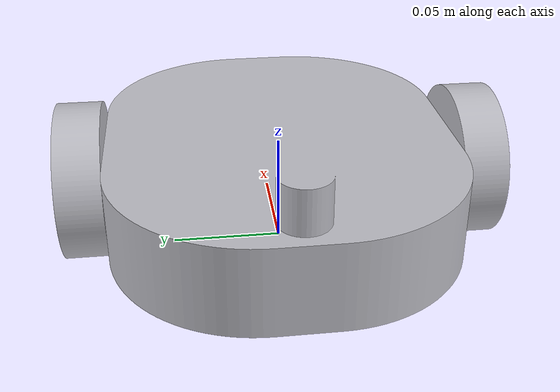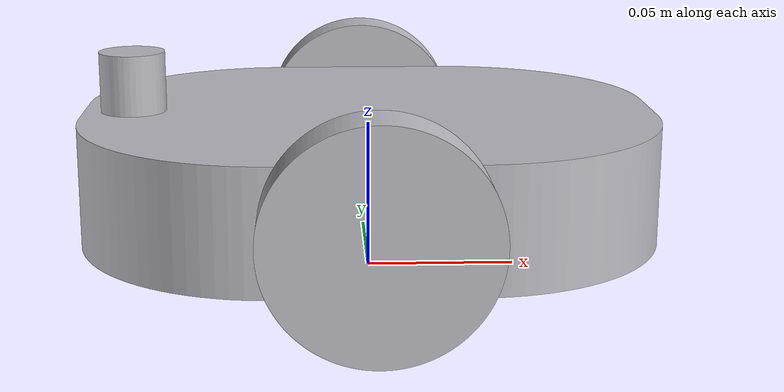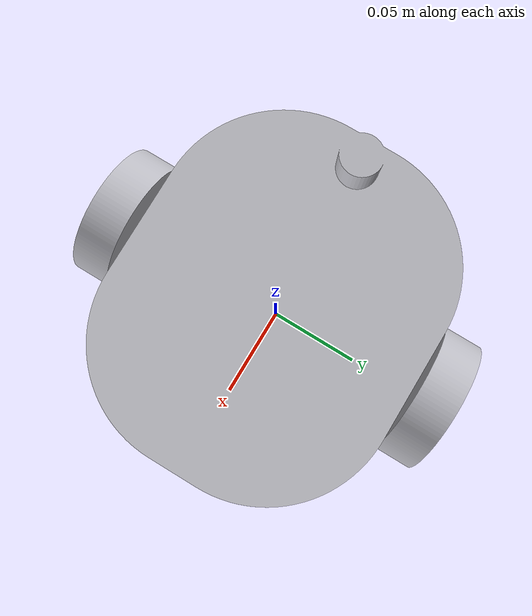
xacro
<?xml version="1.0" ?>
<robot name="Robot" xmlns:xacro="http://www.ros.org/wiki/xacro">

<xacro:include filename="$(find Robot_description)/urdf/materials.xacro" />
<xacro:include filename="$(find Robot_description)/urdf/Robot.ros2control" />
<xacro:include filename="$(find Robot_description)/urdf/Robot.gazebo" />
<link name="base_link">
  <inertial>
    <origin xyz="-0.0008153495925090309 1.7245435006067757e-17 0.036112107040624" rpy="0 0 0"/>
    <mass value="8.27991106794982"/>
    <inertia ixx="0.01541" iyy="0.022173" izz="0.035244" ixy="0.0" iyz="0.0" ixz="8e-05"/>
  </inertial>
  <visual>
    <origin xyz="0 0 0" rpy="0 0 0"/>
    <geometry>
      <mesh filename="file://$(find Robot_description)/meshes/base_link.stl" scale="0.001 0.001 0.001"/>
    </geometry>
    <material name="silver"/>
  </visual>
  <collision>
    <origin xyz="0 0 0" rpy="0 0 0"/>
    <geometry>
      <mesh filename="file://$(find Robot_description)/meshes/base_link.stl" scale="0.001 0.001 0.001"/>
    </geometry>
  </collision>
</link>

<link name="Left_Wheel_1">
  <inertial>
    <origin xyz="-7.336881286106931e-18 -0.010000367047189873 -6.938893903907228e-18" rpy="0 0 0"/>
    <mass value="0.07205293022889041"/>
    <inertia ixx="2.5e-05" iyy="4.4e-05" izz="2.5e-05" ixy="0.0" iyz="0.0" ixz="-0.0"/>
  </inertial>
  <visual>
    <origin xyz="-0.0 0.078227 -0.036" rpy="0 0 0"/>
    <geometry>
      <mesh filename="file://$(find Robot_description)/meshes/Left_Wheel_1.stl" scale="0.001 0.001 0.001"/>
    </geometry>
    <material name="silver"/>
  </visual>
  <collision>
    <origin xyz="-0.0 0.078227 -0.036" rpy="0 0 0"/>
    <geometry>
      <mesh filename="file://$(find Robot_description)/meshes/Left_Wheel_1.stl" scale="0.001 0.001 0.001"/>
    </geometry>
  </collision>
</link>

<link name="Right_Wheel_1">
  <inertial>
    <origin xyz="-7.336881286106931e-18 0.010000367047189873 -6.938893903907228e-18" rpy="0 0 0"/>
    <mass value="0.07205293022889041"/>
    <inertia ixx="2.5e-05" iyy="4.4e-05" izz="2.5e-05" ixy="-0.0" iyz="0.0" ixz="-0.0"/>
  </inertial>
  <visual>
    <origin xyz="-0.0 -0.078227 -0.036" rpy="0 0 0"/>
    <geometry>
      <mesh filename="file://$(find Robot_description)/meshes/Right_Wheel_1.stl" scale="0.001 0.001 0.001"/>
    </geometry>
    <material name="silver"/>
  </visual>
  <collision>
    <origin xyz="-0.0 -0.078227 -0.036" rpy="0 0 0"/>
    <geometry>
      <mesh filename="file://$(find Robot_description)/meshes/Right_Wheel_1.stl" scale="0.001 0.001 0.001"/>
    </geometry>
  </collision>
</link>

<joint name="Revolute 9" type="continuous">
  <origin xyz="0.0 -0.078227 0.036" rpy="0 0 0"/>
  <parent link="base_link"/>
  <child link="Left_Wheel_1"/>
  <axis xyz="0.0 -1.0 0.0"/>
</joint>

<joint name="Revolute 10" type="continuous">
  <origin xyz="0.0 0.078227 0.036" rpy="0 0 0"/>
  <parent link="base_link"/>
  <child link="Right_Wheel_1"/>
  <axis xyz="0.0 1.0 0.0"/>
</joint>

</robot>

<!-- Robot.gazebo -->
<robot name="Robot" xmlns:xacro="http://www.ros.org/wiki/xacro" >

<xacro:property name="body_color" value="Gazebo/Silver" />

<gazebo reference="base_link">
  <material>${body_color}</material>
  <mu1>0.2</mu1>
  <mu2>0.2</mu2>
  <self_collide>true</self_collide>
  <gravity>true</gravity>
</gazebo>

<gazebo reference="Left_Wheel_1">
  <material>${body_color}</material>
  <mu1>0.2</mu1>
  <mu2>0.2</mu2>
  <self_collide>true</self_collide>
</gazebo>

<gazebo reference="Right_Wheel_1">
  <material>${body_color}</material>
  <mu1>0.2</mu1>
  <mu2>0.2</mu2>
  <self_collide>true</self_collide>
</gazebo>

</robot>
